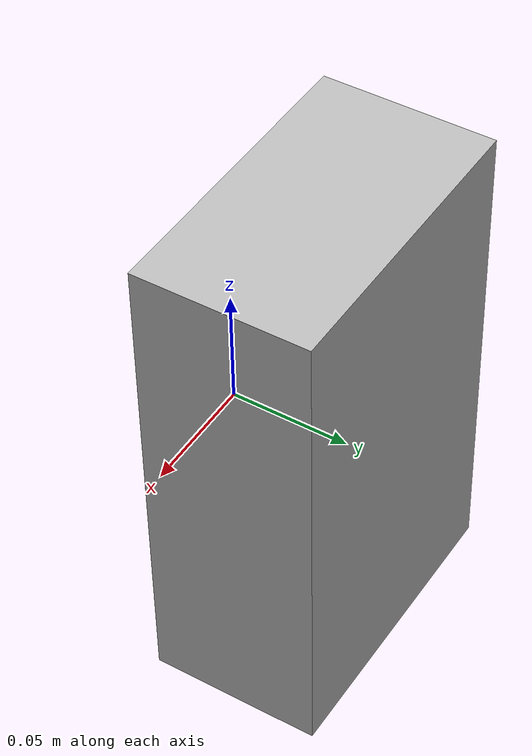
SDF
<?xml version="1.0" ?>
<sdf version="1.4">
  <model name="shelf1_box1_1c">
    <link name="body">
      <pose>0 0 0 0 0 0</pose>
      <inertial>
        <pose>  -0.002215   0.036222   0.005985 0 0 0</pose>
        <mass>0.5</mass>
        <inertia>
          <ixx>0.01</ixx>
          <ixy>0</ixy>
          <ixz>0</ixz>
          <iyy>0.01</iyy>
          <iyz>0</iyz>
          <izz>0.01</izz>
        </inertia>
      </inertial>
      <collision name="collision">
        <geometry>
          <mesh>
            <uri>model://bookshelf/shelf1_items/box1_1c/box1_1c.dae</uri>
          </mesh>
        </geometry>
      </collision>
      <visual name="visual">
        <geometry>
          <mesh>
            <uri>model://bookshelf/shelf1_items/box1_1c/box1_1c.dae</uri>
          </mesh>
        </geometry>
      </visual>
    </link>
  </model>
</sdf>
